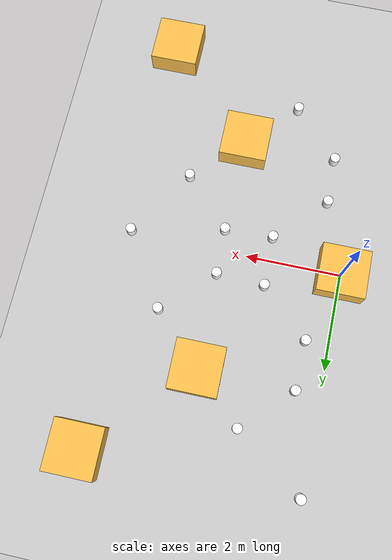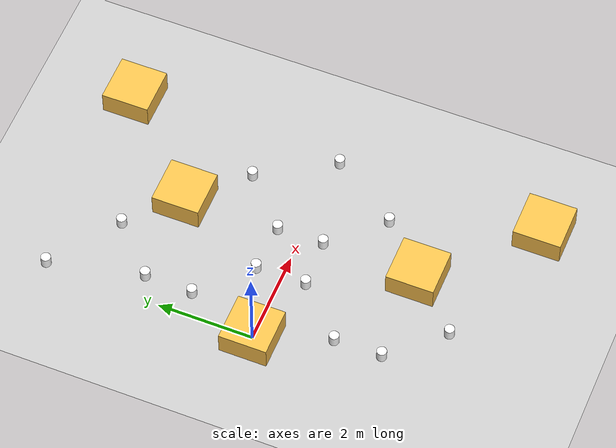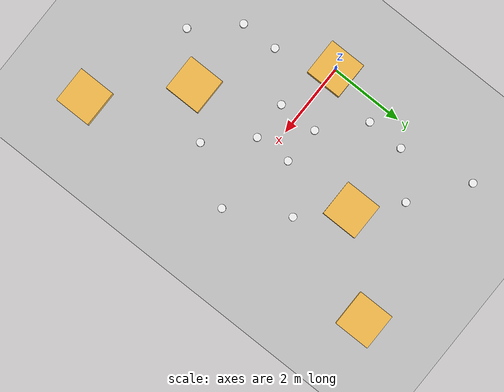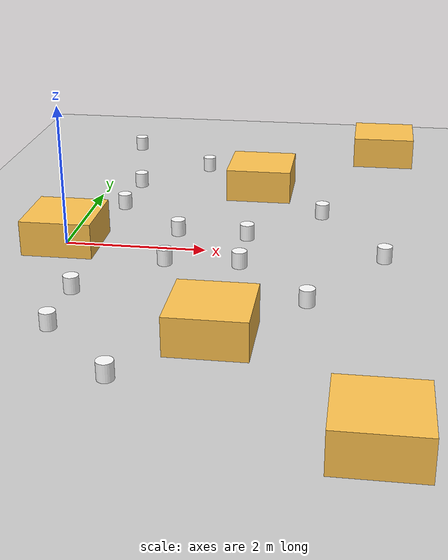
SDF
<sdf version="1.6">
 <world name="default">
  <model name="ground_plane">
   <static>1</static>
   <link name="link">
    <collision name="collision">
     <geometry><plane><normal>0 0 1</normal><size>100 100</size></plane></geometry>
     <surface><friction><ode><mu>100</mu><mu2>50</mu2></ode></friction></surface>
    </collision>
    <visual name="visual">
     <cast_shadows>0</cast_shadows>
     <geometry><plane><normal>0 0 1</normal><size>100 100</size></plane></geometry>
     <material>
      <script><uri>file://media/materials/scripts/gazebo.material</uri><name>Gazebo/Grey</name></script>
     </material>
    </visual>
   </link>
  </model>
  <model name="unit_box_0_orange_clone_7">
   <link name="link">
    <inertial>
     <mass>10</mass>
     <inertia><ixx>0.473401</ixx><ixy>0</ixy><ixz>0</ixz><iyy>2.14637</iyy><iyz>0</iyz><izz>2.14637</izz></inertia>
    </inertial>
    <visual name="visual">
     <geometry><box><size>1.00001 1 0.5</size></box></geometry>
     <material>
      <script><name>Gazebo/Grey</name><uri>file://media/materials/scripts/gazebo.material</uri></script>
      <ambient>1 0.765 0.306 1</ambient>
      <diffuse>0.7 0.7 0.7 1</diffuse>
      <specular>0.01 0.01 0.01 1</specular>
      <emissive>0 0 0 1</emissive>
      <shader type="vertex"><normal_map>__default__</normal_map></shader>
     </material>
    </visual>
    <collision name="collision">
     <geometry><box><size>1 1 0.5</size></box></geometry>
     <surface>
      <friction>
       <ode><mu>1</mu><mu2>1</mu2><fdir1>0 0 0</fdir1><slip1>0</slip1><slip2>0</slip2></ode>
       <torsional>
        <coefficient>1</coefficient>
        <patch_radius>0</patch_radius>
        <surface_radius>0</surface_radius>
        <use_patch_radius>1</use_patch_radius>
        <ode><slip>0</slip></ode>
       </torsional>
      </friction>
      <bounce><restitution_coefficient>0</restitution_coefficient><threshold>1e+06</threshold></bounce>
      <contact>
       <collide_without_contact>0</collide_without_contact>
       <collide_without_contact_bitmask>1</collide_without_contact_bitmask>
       <collide_bitmask>1</collide_bitmask>
       <ode>
        <soft_cfm>0</soft_cfm>
        <soft_erp>0.2</soft_erp>
        <kp>1e+13</kp>
        <kd>1</kd>
        <max_vel>0.01</max_vel>
        <min_depth>0</min_depth>
       </ode>
       <bullet>
        <split_impulse>1</split_impulse>
        <split_impulse_penetration_threshold>-0.01</split_impulse_penetration_threshold>
        <soft_cfm>0</soft_cfm>
        <soft_erp>0.2</soft_erp>
        <kp>1e+13</kp>
        <kd>1</kd>
       </bullet>
      </contact>
     </surface>
    </collision>
   </link>
   <static>1</static>
   <pose>2.5 -2.5 0.25 0 -0 0</pose>
  </model>
  <model name="unit_box_0_orange_clone_8_clone_0">
   <link name="link">
    <inertial>
     <mass>10</mass>
     <inertia><ixx>0.473401</ixx><ixy>0</ixy><ixz>0</ixz><iyy>2.14637</iyy><iyz>0</iyz><izz>2.14637</izz></inertia>
    </inertial>
    <visual name="visual">
     <geometry><box><size>1.00001 1 0.5</size></box></geometry>
     <material>
      <script><name>Gazebo/Grey</name><uri>file://media/materials/scripts/gazebo.material</uri></script>
      <ambient>1 0.765 0.306 1</ambient>
      <diffuse>0.7 0.7 0.7 1</diffuse>
      <specular>0.01 0.01 0.01 1</specular>
      <emissive>0 0 0 1</emissive>
      <shader type="vertex"><normal_map>__default__</normal_map></shader>
     </material>
    </visual>
    <collision name="collision">
     <geometry><box><size>1 1 0.5</size></box></geometry>
     <surface>
      <friction>
       <ode><mu>1</mu><mu2>1</mu2><fdir1>0 0 0</fdir1><slip1>0</slip1><slip2>0</slip2></ode>
       <torsional>
        <coefficient>1</coefficient>
        <patch_radius>0</patch_radius>
        <surface_radius>0</surface_radius>
        <use_patch_radius>1</use_patch_radius>
        <ode><slip>0</slip></ode>
       </torsional>
      </friction>
      <bounce><restitution_coefficient>0</restitution_coefficient><threshold>1e+06</threshold></bounce>
      <contact>
       <collide_without_contact>0</collide_without_contact>
       <collide_without_contact_bitmask>1</collide_without_contact_bitmask>
       <collide_bitmask>1</collide_bitmask>
       <ode>
        <soft_cfm>0</soft_cfm>
        <soft_erp>0.2</soft_erp>
        <kp>1e+13</kp>
        <kd>1</kd>
        <max_vel>0.01</max_vel>
        <min_depth>0</min_depth>
       </ode>
       <bullet>
        <split_impulse>1</split_impulse>
        <split_impulse_penetration_threshold>-0.01</split_impulse_penetration_threshold>
        <soft_cfm>0</soft_cfm>
        <soft_erp>0.2</soft_erp>
        <kp>1e+13</kp>
        <kd>1</kd>
       </bullet>
      </contact>
     </surface>
    </collision>
   </link>
   <static>1</static>
   <pose>2.5 2.5 0.25 0 -0 0</pose>
  </model>
  <model name="unit_box_0_orange_clone_8_clone_1">
   <link name="link">
    <inertial>
     <mass>10</mass>
     <inertia><ixx>0.473401</ixx><ixy>0</ixy><ixz>0</ixz><iyy>2.14637</iyy><iyz>0</iyz><izz>2.14637</izz></inertia>
    </inertial>
    <visual name="visual">
     <geometry><box><size>1.00001 1 0.5</size></box></geometry>
     <material>
      <script><name>Gazebo/Grey</name><uri>file://media/materials/scripts/gazebo.material</uri></script>
      <ambient>1 0.765 0.306 1</ambient>
      <diffuse>0.7 0.7 0.7 1</diffuse>
      <specular>0.01 0.01 0.01 1</specular>
      <emissive>0 0 0 1</emissive>
      <shader type="vertex"><normal_map>__default__</normal_map></shader>
     </material>
    </visual>
    <collision name="collision">
     <geometry><box><size>1 1 0.5</size></box></geometry>
     <surface>
      <friction>
       <ode><mu>1</mu><mu2>1</mu2><fdir1>0 0 0</fdir1><slip1>0</slip1><slip2>0</slip2></ode>
       <torsional>
        <coefficient>1</coefficient>
        <patch_radius>0</patch_radius>
        <surface_radius>0</surface_radius>
        <use_patch_radius>1</use_patch_radius>
        <ode><slip>0</slip></ode>
       </torsional>
      </friction>
      <bounce><restitution_coefficient>0</restitution_coefficient><threshold>1e+06</threshold></bounce>
      <contact>
       <collide_without_contact>0</collide_without_contact>
       <collide_without_contact_bitmask>1</collide_without_contact_bitmask>
       <collide_bitmask>1</collide_bitmask>
       <ode>
        <soft_cfm>0</soft_cfm>
        <soft_erp>0.2</soft_erp>
        <kp>1e+13</kp>
        <kd>1</kd>
        <max_vel>0.01</max_vel>
        <min_depth>0</min_depth>
       </ode>
       <bullet>
        <split_impulse>1</split_impulse>
        <split_impulse_penetration_threshold>-0.01</split_impulse_penetration_threshold>
        <soft_cfm>0</soft_cfm>
        <soft_erp>0.2</soft_erp>
        <kp>1e+13</kp>
        <kd>1</kd>
       </bullet>
      </contact>
     </surface>
    </collision>
   </link>
   <static>1</static>
   <pose>0 0 0.25 0 -0 0</pose>
  </model>
  <model name="unit_box_0_orange_clone_7_clone">
   <link name="link">
    <inertial>
     <mass>10</mass>
     <inertia><ixx>0.473401</ixx><ixy>0</ixy><ixz>0</ixz><iyy>2.14637</iyy><iyz>0</iyz><izz>2.14637</izz></inertia>
    </inertial>
    <visual name="visual">
     <geometry><box><size>1.00001 1 0.5</size></box></geometry>
     <material>
      <script><name>Gazebo/Grey</name><uri>file://media/materials/scripts/gazebo.material</uri></script>
      <ambient>1 0.765 0.306 1</ambient>
      <diffuse>0.7 0.7 0.7 1</diffuse>
      <specular>0.01 0.01 0.01 1</specular>
      <emissive>0 0 0 1</emissive>
      <shader type="vertex"><normal_map>__default__</normal_map></shader>
     </material>
    </visual>
    <collision name="collision">
     <geometry><box><size>1 1 0.5</size></box></geometry>
     <surface>
      <friction>
       <ode><mu>1</mu><mu2>1</mu2><fdir1>0 0 0</fdir1><slip1>0</slip1><slip2>0</slip2></ode>
       <torsional>
        <coefficient>1</coefficient>
        <patch_radius>0</patch_radius>
        <surface_radius>0</surface_radius>
        <use_patch_radius>1</use_patch_radius>
        <ode><slip>0</slip></ode>
       </torsional>
      </friction>
      <bounce><restitution_coefficient>0</restitution_coefficient><threshold>1e+06</threshold></bounce>
      <contact>
       <collide_without_contact>0</collide_without_contact>
       <collide_without_contact_bitmask>1</collide_without_contact_bitmask>
       <collide_bitmask>1</collide_bitmask>
       <ode>
        <soft_cfm>0</soft_cfm>
        <soft_erp>0.2</soft_erp>
        <kp>1e+13</kp>
        <kd>1</kd>
        <max_vel>0.01</max_vel>
        <min_depth>0</min_depth>
       </ode>
       <bullet>
        <split_impulse>1</split_impulse>
        <split_impulse_penetration_threshold>-0.01</split_impulse_penetration_threshold>
        <soft_cfm>0</soft_cfm>
        <soft_erp>0.2</soft_erp>
        <kp>1e+13</kp>
        <kd>1</kd>
       </bullet>
      </contact>
     </surface>
    </collision>
   </link>
   <static>1</static>
   <pose>4.43771 -4.44352 0.25 0 -0 0</pose>
  </model>
  <model name="unit_box_0_orange_clone_7_clone_2">
   <link name="link">
    <inertial>
     <mass>10</mass>
     <inertia><ixx>0.473401</ixx><ixy>0</ixy><ixz>0</ixz><iyy>2.14637</iyy><iyz>0</iyz><izz>2.14637</izz></inertia>
    </inertial>
    <visual name="visual">
     <geometry><box><size>1.00001 1 0.5</size></box></geometry>
     <material>
      <script><name>Gazebo/Grey</name><uri>file://media/materials/scripts/gazebo.material</uri></script>
      <ambient>1 0.765 0.306 1</ambient>
      <diffuse>0.7 0.7 0.7 1</diffuse>
      <specular>0.01 0.01 0.01 1</specular>
      <emissive>0 0 0 1</emissive>
      <shader type="vertex"><normal_map>__default__</normal_map></shader>
     </material>
    </visual>
    <collision name="collision">
     <geometry><box><size>1 1 0.5</size></box></geometry>
     <surface>
      <friction>
       <ode><mu>1</mu><mu2>1</mu2><fdir1>0 0 0</fdir1><slip1>0</slip1><slip2>0</slip2></ode>
       <torsional>
        <coefficient>1</coefficient>
        <patch_radius>0</patch_radius>
        <surface_radius>0</surface_radius>
        <use_patch_radius>1</use_patch_radius>
        <ode><slip>0</slip></ode>
       </torsional>
      </friction>
      <bounce><restitution_coefficient>0</restitution_coefficient><threshold>1e+06</threshold></bounce>
      <contact>
       <collide_without_contact>0</collide_without_contact>
       <collide_without_contact_bitmask>1</collide_without_contact_bitmask>
       <collide_bitmask>1</collide_bitmask>
       <ode>
        <soft_cfm>0</soft_cfm>
        <soft_erp>0.2</soft_erp>
        <kp>1e+13</kp>
        <kd>1</kd>
        <max_vel>0.01</max_vel>
        <min_depth>0</min_depth>
       </ode>
       <bullet>
        <split_impulse>1</split_impulse>
        <split_impulse_penetration_threshold>-0.01</split_impulse_penetration_threshold>
        <soft_cfm>0</soft_cfm>
        <soft_erp>0.2</soft_erp>
        <kp>1e+13</kp>
        <kd>1</kd>
       </bullet>
      </contact>
     </surface>
    </collision>
   </link>
   <static>1</static>
   <pose>4.44066 4.44748 0.25 0 -0 0</pose>
  </model>
  <model name="beer_big_0">
   <link name="link">
    <pose>0 0 0.115 0 -0 0</pose>
    <inertial>
     <mass>1.34731</mass>
     <inertia>
      <ixx>0.0028093</ixx>
      <ixy>0</ixy>
      <ixz>0</ixz>
      <iyy>0.0028093</iyy>
      <iyz>0</iyz>
      <izz>0.00226756</izz>
     </inertia>
    </inertial>
    <visual name="visual">
     <geometry><cylinder><radius>0.102222</radius><length>0.23</length></cylinder></geometry>
     <material>
      <script>
       <uri>model://beer/materials/scripts</uri>
       <uri>model://beer/materials/textures</uri>
       <name>Beer/Diffuse</name>
      </script>
      <ambient>1 1 1 1</ambient>
      <diffuse>1 1 1 1</diffuse>
      <specular>0 0 0 1</specular>
      <emissive>0 0 0 1</emissive>
     </material>
    </visual>
    <collision name="collision">
     <geometry><cylinder><radius>0.102222</radius><length>0.23</length></cylinder></geometry>
     <surface>
      <friction>
       <ode><mu>1</mu><mu2>1</mu2><fdir1>0 0 0</fdir1><slip1>0</slip1><slip2>0</slip2></ode>
       <torsional>
        <coefficient>1</coefficient>
        <patch_radius>0</patch_radius>
        <surface_radius>0</surface_radius>
        <use_patch_radius>1</use_patch_radius>
        <ode><slip>0</slip></ode>
       </torsional>
      </friction>
      <bounce><restitution_coefficient>0</restitution_coefficient><threshold>1e+06</threshold></bounce>
      <contact>
       <collide_without_contact>0</collide_without_contact>
       <collide_without_contact_bitmask>1</collide_without_contact_bitmask>
       <collide_bitmask>1</collide_bitmask>
       <ode>
        <soft_cfm>0</soft_cfm>
        <soft_erp>0.2</soft_erp>
        <kp>1e+13</kp>
        <kd>1</kd>
        <max_vel>0.01</max_vel>
        <min_depth>0</min_depth>
       </ode>
       <bullet>
        <split_impulse>1</split_impulse>
        <split_impulse_penetration_threshold>-0.01</split_impulse_penetration_threshold>
        <soft_cfm>0</soft_cfm>
        <soft_erp>0.2</soft_erp>
        <kp>1e+13</kp>
        <kd>1</kd>
       </bullet>
      </contact>
     </surface>
    </collision>
   </link>
   <static>0</static>
   <pose>4.47702 -0.049065 0 0 0 -5e-06</pose>
  </model>
  <model name="beer_big_1">
   <link name="link">
    <pose>0 0 0.115 0 -0 0</pose>
    <inertial>
     <mass>1.34731</mass>
     <inertia>
      <ixx>0.0028093</ixx>
      <ixy>0</ixy>
      <ixz>0</ixz>
      <iyy>0.0028093</iyy>
      <iyz>0</iyz>
      <izz>0.00226756</izz>
     </inertia>
    </inertial>
    <visual name="visual">
     <geometry><cylinder><radius>0.102222</radius><length>0.23</length></cylinder></geometry>
     <material>
      <script>
       <uri>model://beer/materials/scripts</uri>
       <uri>model://beer/materials/textures</uri>
       <name>Beer/Diffuse</name>
      </script>
      <ambient>1 1 1 1</ambient>
      <diffuse>1 1 1 1</diffuse>
      <specular>0 0 0 1</specular>
      <emissive>0 0 0 1</emissive>
     </material>
    </visual>
    <collision name="collision">
     <geometry><cylinder><radius>0.102222</radius><length>0.23</length></cylinder></geometry>
     <surface>
      <friction>
       <ode><mu>1</mu><mu2>1</mu2><fdir1>0 0 0</fdir1><slip1>0</slip1><slip2>0</slip2></ode>
       <torsional>
        <coefficient>1</coefficient>
        <patch_radius>0</patch_radius>
        <surface_radius>0</surface_radius>
        <use_patch_radius>1</use_patch_radius>
        <ode><slip>0</slip></ode>
       </torsional>
      </friction>
      <bounce><restitution_coefficient>0</restitution_coefficient><threshold>1e+06</threshold></bounce>
      <contact>
       <collide_without_contact>0</collide_without_contact>
       <collide_without_contact_bitmask>1</collide_without_contact_bitmask>
       <collide_bitmask>1</collide_bitmask>
       <ode>
        <soft_cfm>0</soft_cfm>
        <soft_erp>0.2</soft_erp>
        <kp>1e+13</kp>
        <kd>1</kd>
        <max_vel>0.01</max_vel>
        <min_depth>0</min_depth>
       </ode>
       <bullet>
        <split_impulse>1</split_impulse>
        <split_impulse_penetration_threshold>-0.01</split_impulse_penetration_threshold>
        <soft_cfm>0</soft_cfm>
        <soft_erp>0.2</soft_erp>
        <kp>1e+13</kp>
        <kd>1</kd>
       </bullet>
      </contact>
     </surface>
    </collision>
   </link>
   <static>0</static>
   <pose>3.52895 -1.49271 0 0 -0 0</pose>
  </model>
  <model name="beer_big_2">
   <link name="link">
    <pose>0 0 0.115 0 -0 0</pose>
    <inertial>
     <mass>1.34731</mass>
     <inertia>
      <ixx>0.0028093</ixx>
      <ixy>0</ixy>
      <ixz>0</ixz>
      <iyy>0.0028093</iyy>
      <iyz>0</iyz>
      <izz>0.00226756</izz>
     </inertia>
    </inertial>
    <visual name="visual">
     <geometry><cylinder><radius>0.102222</radius><length>0.23</length></cylinder></geometry>
     <material>
      <script>
       <uri>model://beer/materials/scripts</uri>
       <uri>model://beer/materials/textures</uri>
       <name>Beer/Diffuse</name>
      </script>
      <ambient>1 1 1 1</ambient>
      <diffuse>1 1 1 1</diffuse>
      <specular>0 0 0 1</specular>
      <emissive>0 0 0 1</emissive>
     </material>
    </visual>
    <collision name="collision">
     <geometry><cylinder><radius>0.102222</radius><length>0.23</length></cylinder></geometry>
     <surface>
      <friction>
       <ode><mu>1</mu><mu2>1</mu2><fdir1>0 0 0</fdir1><slip1>0</slip1><slip2>0</slip2></ode>
       <torsional>
        <coefficient>1</coefficient>
        <patch_radius>0</patch_radius>
        <surface_radius>0</surface_radius>
        <use_patch_radius>1</use_patch_radius>
        <ode><slip>0</slip></ode>
       </torsional>
      </friction>
      <bounce><restitution_coefficient>0</restitution_coefficient><threshold>1e+06</threshold></bounce>
      <contact>
       <collide_without_contact>0</collide_without_contact>
       <collide_without_contact_bitmask>1</collide_without_contact_bitmask>
       <collide_bitmask>1</collide_bitmask>
       <ode>
        <soft_cfm>0</soft_cfm>
        <soft_erp>0.2</soft_erp>
        <kp>1e+13</kp>
        <kd>1</kd>
        <max_vel>0.01</max_vel>
        <min_depth>0</min_depth>
       </ode>
       <bullet>
        <split_impulse>1</split_impulse>
        <split_impulse_penetration_threshold>-0.01</split_impulse_penetration_threshold>
        <soft_cfm>0</soft_cfm>
        <soft_erp>0.2</soft_erp>
        <kp>1e+13</kp>
        <kd>1</kd>
       </bullet>
      </contact>
     </surface>
    </collision>
   </link>
   <static>0</static>
   <pose>3.53977 1.47202 0 0 -0 0</pose>
  </model>
  <model name="beer_big_3">
   <link name="link">
    <pose>0 0 0.115 0 -0 0</pose>
    <inertial>
     <mass>1.34731</mass>
     <inertia>
      <ixx>0.0028093</ixx>
      <ixy>0</ixy>
      <ixz>0</ixz>
      <iyy>0.0028093</iyy>
      <iyz>0</iyz>
      <izz>0.00226756</izz>
     </inertia>
    </inertial>
    <visual name="visual">
     <geometry><cylinder><radius>0.102222</radius><length>0.23</length></cylinder></geometry>
     <material>
      <script>
       <uri>model://beer/materials/scripts</uri>
       <uri>model://beer/materials/textures</uri>
       <name>Beer/Diffuse</name>
      </script>
      <ambient>1 1 1 1</ambient>
      <diffuse>1 1 1 1</diffuse>
      <specular>0 0 0 1</specular>
      <emissive>0 0 0 1</emissive>
     </material>
    </visual>
    <collision name="collision">
     <geometry><cylinder><radius>0.102222</radius><length>0.23</length></cylinder></geometry>
     <surface>
      <friction>
       <ode><mu>1</mu><mu2>1</mu2><fdir1>0 0 0</fdir1><slip1>0</slip1><slip2>0</slip2></ode>
       <torsional>
        <coefficient>1</coefficient>
        <patch_radius>0</patch_radius>
        <surface_radius>0</surface_radius>
        <use_patch_radius>1</use_patch_radius>
        <ode><slip>0</slip></ode>
       </torsional>
      </friction>
      <bounce><restitution_coefficient>0</restitution_coefficient><threshold>1e+06</threshold></bounce>
      <contact>
       <collide_without_contact>0</collide_without_contact>
       <collide_without_contact_bitmask>1</collide_without_contact_bitmask>
       <collide_bitmask>1</collide_bitmask>
       <ode>
        <soft_cfm>0</soft_cfm>
        <soft_erp>0.2</soft_erp>
        <kp>1e+13</kp>
        <kd>1</kd>
        <max_vel>0.01</max_vel>
        <min_depth>0</min_depth>
       </ode>
       <bullet>
        <split_impulse>1</split_impulse>
        <split_impulse_penetration_threshold>-0.01</split_impulse_penetration_threshold>
        <soft_cfm>0</soft_cfm>
        <soft_erp>0.2</soft_erp>
        <kp>1e+13</kp>
        <kd>1</kd>
       </bullet>
      </contact>
     </surface>
    </collision>
   </link>
   <static>0</static>
   <pose>2.5427 -0.464399 0 0 -0 0</pose>
  </model>
  <model name="beer_big_4">
   <link name="link">
    <pose>0 0 0.115 0 -0 0</pose>
    <inertial>
     <mass>1.34731</mass>
     <inertia>
      <ixx>0.0028093</ixx>
      <ixy>0</ixy>
      <ixz>0</ixz>
      <iyy>0.0028093</iyy>
      <iyz>0</iyz>
      <izz>0.00226756</izz>
     </inertia>
    </inertial>
    <visual name="visual">
     <geometry><cylinder><radius>0.102222</radius><length>0.23</length></cylinder></geometry>
     <material>
      <script>
       <uri>model://beer/materials/scripts</uri>
       <uri>model://beer/materials/textures</uri>
       <name>Beer/Diffuse</name>
      </script>
      <ambient>1 1 1 1</ambient>
      <diffuse>1 1 1 1</diffuse>
      <specular>0 0 0 1</specular>
      <emissive>0 0 0 1</emissive>
     </material>
    </visual>
    <collision name="collision">
     <geometry><cylinder><radius>0.102222</radius><length>0.23</length></cylinder></geometry>
     <surface>
      <friction>
       <ode><mu>1</mu><mu2>1</mu2><fdir1>0 0 0</fdir1><slip1>0</slip1><slip2>0</slip2></ode>
       <torsional>
        <coefficient>1</coefficient>
        <patch_radius>0</patch_radius>
        <surface_radius>0</surface_radius>
        <use_patch_radius>1</use_patch_radius>
        <ode><slip>0</slip></ode>
       </torsional>
      </friction>
      <bounce><restitution_coefficient>0</restitution_coefficient><threshold>1e+06</threshold></bounce>
      <contact>
       <collide_without_contact>0</collide_without_contact>
       <collide_without_contact_bitmask>1</collide_without_contact_bitmask>
       <collide_bitmask>1</collide_bitmask>
       <ode>
        <soft_cfm>0</soft_cfm>
        <soft_erp>0.2</soft_erp>
        <kp>1e+13</kp>
        <kd>1</kd>
        <max_vel>0.01</max_vel>
        <min_depth>0</min_depth>
       </ode>
       <bullet>
        <split_impulse>1</split_impulse>
        <split_impulse_penetration_threshold>-0.01</split_impulse_penetration_threshold>
        <soft_cfm>0</soft_cfm>
        <soft_erp>0.2</soft_erp>
        <kp>1e+13</kp>
        <kd>1</kd>
       </bullet>
      </contact>
     </surface>
    </collision>
   </link>
   <static>0</static>
   <pose>2.52241 0.503922 0 0 -0 0</pose>
  </model>
  <model name="beer_big_5">
   <link name="link">
    <pose>0 0 0.115 0 -0 0</pose>
    <inertial>
     <mass>1.34731</mass>
     <inertia>
      <ixx>0.0028093</ixx>
      <ixy>0</ixy>
      <ixz>0</ixz>
      <iyy>0.0028093</iyy>
      <iyz>0</iyz>
      <izz>0.00226756</izz>
     </inertia>
    </inertial>
    <visual name="visual">
     <geometry><cylinder><radius>0.102222</radius><length>0.23</length></cylinder></geometry>
     <material>
      <script>
       <uri>model://beer/materials/scripts</uri>
       <uri>model://beer/materials/textures</uri>
       <name>Beer/Diffuse</name>
      </script>
      <ambient>1 1 1 1</ambient>
      <diffuse>1 1 1 1</diffuse>
      <specular>0 0 0 1</specular>
      <emissive>0 0 0 1</emissive>
     </material>
    </visual>
    <collision name="collision">
     <geometry><cylinder><radius>0.102222</radius><length>0.23</length></cylinder></geometry>
     <surface>
      <friction>
       <ode><mu>1</mu><mu2>1</mu2><fdir1>0 0 0</fdir1><slip1>0</slip1><slip2>0</slip2></ode>
       <torsional>
        <coefficient>1</coefficient>
        <patch_radius>0</patch_radius>
        <surface_radius>0</surface_radius>
        <use_patch_radius>1</use_patch_radius>
        <ode><slip>0</slip></ode>
       </torsional>
      </friction>
      <bounce><restitution_coefficient>0</restitution_coefficient><threshold>1e+06</threshold></bounce>
      <contact>
       <collide_without_contact>0</collide_without_contact>
       <collide_without_contact_bitmask>1</collide_without_contact_bitmask>
       <collide_bitmask>1</collide_bitmask>
       <ode>
        <soft_cfm>0</soft_cfm>
        <soft_erp>0.2</soft_erp>
        <kp>1e+13</kp>
        <kd>1</kd>
        <max_vel>0.01</max_vel>
        <min_depth>0</min_depth>
       </ode>
       <bullet>
        <split_impulse>1</split_impulse>
        <split_impulse_penetration_threshold>-0.01</split_impulse_penetration_threshold>
        <soft_cfm>0</soft_cfm>
        <soft_erp>0.2</soft_erp>
        <kp>1e+13</kp>
        <kd>1</kd>
       </bullet>
      </contact>
     </surface>
    </collision>
   </link>
   <static>0</static>
   <pose>1.52598 -0.504635 0 0 -0 0</pose>
  </model>
  <model name="beer_big_6">
   <link name="link">
    <pose>0 0 0.115 0 -0 0</pose>
    <inertial>
     <mass>1.34731</mass>
     <inertia>
      <ixx>0.0028093</ixx>
      <ixy>0</ixy>
      <ixz>0</ixz>
      <iyy>0.0028093</iyy>
      <iyz>0</iyz>
      <izz>0.00226756</izz>
     </inertia>
    </inertial>
    <visual name="visual">
     <geometry><cylinder><radius>0.102222</radius><length>0.23</length></cylinder></geometry>
     <material>
      <script>
       <uri>model://beer/materials/scripts</uri>
       <uri>model://beer/materials/textures</uri>
       <name>Beer/Diffuse</name>
      </script>
      <ambient>1 1 1 1</ambient>
      <diffuse>1 1 1 1</diffuse>
      <specular>0 0 0 1</specular>
      <emissive>0 0 0 1</emissive>
     </material>
    </visual>
    <collision name="collision">
     <geometry><cylinder><radius>0.102222</radius><length>0.23</length></cylinder></geometry>
     <surface>
      <friction>
       <ode><mu>1</mu><mu2>1</mu2><fdir1>0 0 0</fdir1><slip1>0</slip1><slip2>0</slip2></ode>
       <torsional>
        <coefficient>1</coefficient>
        <patch_radius>0</patch_radius>
        <surface_radius>0</surface_radius>
        <use_patch_radius>1</use_patch_radius>
        <ode><slip>0</slip></ode>
       </torsional>
      </friction>
      <bounce><restitution_coefficient>0</restitution_coefficient><threshold>1e+06</threshold></bounce>
      <contact>
       <collide_without_contact>0</collide_without_contact>
       <collide_without_contact_bitmask>1</collide_without_contact_bitmask>
       <collide_bitmask>1</collide_bitmask>
       <ode>
        <soft_cfm>0</soft_cfm>
        <soft_erp>0.2</soft_erp>
        <kp>1e+13</kp>
        <kd>1</kd>
        <max_vel>0.01</max_vel>
        <min_depth>0</min_depth>
       </ode>
       <bullet>
        <split_impulse>1</split_impulse>
        <split_impulse_penetration_threshold>-0.01</split_impulse_penetration_threshold>
        <soft_cfm>0</soft_cfm>
        <soft_erp>0.2</soft_erp>
        <kp>1e+13</kp>
        <kd>1</kd>
       </bullet>
      </contact>
     </surface>
    </collision>
   </link>
   <static>0</static>
   <pose>1.51069 0.547359 0 0 -0 0</pose>
  </model>
  <model name="beer_big_8">
   <link name="link">
    <pose>0 0 0.115 0 -0 0</pose>
    <inertial>
     <mass>1.34731</mass>
     <inertia>
      <ixx>0.0028093</ixx>
      <ixy>0</ixy>
      <ixz>0</ixz>
      <iyy>0.0028093</iyy>
      <iyz>0</iyz>
      <izz>0.00226756</izz>
     </inertia>
    </inertial>
    <visual name="visual">
     <geometry><cylinder><radius>0.102222</radius><length>0.23</length></cylinder></geometry>
     <material>
      <script>
       <uri>model://beer/materials/scripts</uri>
       <uri>model://beer/materials/textures</uri>
       <name>Beer/Diffuse</name>
      </script>
      <ambient>1 1 1 1</ambient>
      <diffuse>1 1 1 1</diffuse>
      <specular>0 0 0 1</specular>
      <emissive>0 0 0 1</emissive>
     </material>
    </visual>
    <collision name="collision">
     <geometry><cylinder><radius>0.102222</radius><length>0.23</length></cylinder></geometry>
     <surface>
      <friction>
       <ode><mu>1</mu><mu2>1</mu2><fdir1>0 0 0</fdir1><slip1>0</slip1><slip2>0</slip2></ode>
       <torsional>
        <coefficient>1</coefficient>
        <patch_radius>0</patch_radius>
        <surface_radius>0</surface_radius>
        <use_patch_radius>1</use_patch_radius>
        <ode><slip>0</slip></ode>
       </torsional>
      </friction>
      <bounce><restitution_coefficient>0</restitution_coefficient><threshold>1e+06</threshold></bounce>
      <contact>
       <collide_without_contact>0</collide_without_contact>
       <collide_without_contact_bitmask>1</collide_without_contact_bitmask>
       <collide_bitmask>1</collide_bitmask>
       <ode>
        <soft_cfm>0</soft_cfm>
        <soft_erp>0.2</soft_erp>
        <kp>1e+13</kp>
        <kd>1</kd>
        <max_vel>0.01</max_vel>
        <min_depth>0</min_depth>
       </ode>
       <bullet>
        <split_impulse>1</split_impulse>
        <split_impulse_penetration_threshold>-0.01</split_impulse_penetration_threshold>
        <soft_cfm>0</soft_cfm>
        <soft_erp>0.2</soft_erp>
        <kp>1e+13</kp>
        <kd>1</kd>
       </bullet>
      </contact>
     </surface>
    </collision>
   </link>
   <static>0</static>
   <pose>0.524385 -1.50931 0 0 -0 0</pose>
  </model>
  <model name="beer_big_10">
   <link name="link">
    <pose>0 0 0.115 0 -0 0</pose>
    <inertial>
     <mass>1.34731</mass>
     <inertia>
      <ixx>0.0028093</ixx>
      <ixy>0</ixy>
      <ixz>0</ixz>
      <iyy>0.0028093</iyy>
      <iyz>0</iyz>
      <izz>0.00226756</izz>
     </inertia>
    </inertial>
    <visual name="visual">
     <geometry><cylinder><radius>0.102222</radius><length>0.23</length></cylinder></geometry>
     <material>
      <script>
       <uri>model://beer/materials/scripts</uri>
       <uri>model://beer/materials/textures</uri>
       <name>Beer/Diffuse</name>
      </script>
      <ambient>1 1 1 1</ambient>
      <diffuse>1 1 1 1</diffuse>
      <specular>0 0 0 1</specular>
      <emissive>0 0 0 1</emissive>
     </material>
    </visual>
    <collision name="collision">
     <geometry><cylinder><radius>0.102222</radius><length>0.23</length></cylinder></geometry>
     <surface>
      <friction>
       <ode><mu>1</mu><mu2>1</mu2><fdir1>0 0 0</fdir1><slip1>0</slip1><slip2>0</slip2></ode>
       <torsional>
        <coefficient>1</coefficient>
        <patch_radius>0</patch_radius>
        <surface_radius>0</surface_radius>
        <use_patch_radius>1</use_patch_radius>
        <ode><slip>0</slip></ode>
       </torsional>
      </friction>
      <bounce><restitution_coefficient>0</restitution_coefficient><threshold>1e+06</threshold></bounce>
      <contact>
       <collide_without_contact>0</collide_without_contact>
       <collide_without_contact_bitmask>1</collide_without_contact_bitmask>
       <collide_bitmask>1</collide_bitmask>
       <ode>
        <soft_cfm>0</soft_cfm>
        <soft_erp>0.2</soft_erp>
        <kp>1e+13</kp>
        <kd>1</kd>
        <max_vel>0.01</max_vel>
        <min_depth>0</min_depth>
       </ode>
       <bullet>
        <split_impulse>1</split_impulse>
        <split_impulse_penetration_threshold>-0.01</split_impulse_penetration_threshold>
        <soft_cfm>0</soft_cfm>
        <soft_erp>0.2</soft_erp>
        <kp>1e+13</kp>
        <kd>1</kd>
       </bullet>
      </contact>
     </surface>
    </collision>
   </link>
   <static>0</static>
   <pose>0.536049 -2.50001 0 0 -0 0</pose>
  </model>
  <model name="beer_big_13">
   <link name="link">
    <pose>0 0 0.115 0 -0 0</pose>
    <inertial>
     <mass>1.34731</mass>
     <inertia>
      <ixx>0.0028093</ixx>
      <ixy>0</ixy>
      <ixz>0</ixz>
      <iyy>0.0028093</iyy>
      <iyz>0</iyz>
      <izz>0.00226756</izz>
     </inertia>
    </inertial>
    <visual name="visual">
     <geometry><cylinder><radius>0.102222</radius><length>0.23</length></cylinder></geometry>
     <material>
      <script>
       <uri>model://beer/materials/scripts</uri>
       <uri>model://beer/materials/textures</uri>
       <name>Beer/Diffuse</name>
      </script>
      <ambient>1 1 1 1</ambient>
      <diffuse>1 1 1 1</diffuse>
      <specular>0 0 0 1</specular>
      <emissive>0 0 0 1</emissive>
     </material>
    </visual>
    <collision name="collision">
     <geometry><cylinder><radius>0.102222</radius><length>0.23</length></cylinder></geometry>
     <surface>
      <friction>
       <ode><mu>1</mu><mu2>1</mu2><fdir1>0 0 0</fdir1><slip1>0</slip1><slip2>0</slip2></ode>
       <torsional>
        <coefficient>1</coefficient>
        <patch_radius>0</patch_radius>
        <surface_radius>0</surface_radius>
        <use_patch_radius>1</use_patch_radius>
        <ode><slip>0</slip></ode>
       </torsional>
      </friction>
      <bounce><restitution_coefficient>0</restitution_coefficient><threshold>1e+06</threshold></bounce>
      <contact>
       <collide_without_contact>0</collide_without_contact>
       <collide_without_contact_bitmask>1</collide_without_contact_bitmask>
       <collide_bitmask>1</collide_bitmask>
       <ode>
        <soft_cfm>0</soft_cfm>
        <soft_erp>0.2</soft_erp>
        <kp>1e+13</kp>
        <kd>1</kd>
        <max_vel>0.01</max_vel>
        <min_depth>0</min_depth>
       </ode>
       <bullet>
        <split_impulse>1</split_impulse>
        <split_impulse_penetration_threshold>-0.01</split_impulse_penetration_threshold>
        <soft_cfm>0</soft_cfm>
        <soft_erp>0.2</soft_erp>
        <kp>1e+13</kp>
        <kd>1</kd>
       </bullet>
      </contact>
     </surface>
    </collision>
   </link>
   <static>0</static>
   <pose>1.5089 -3.53936 0 0 -0 0</pose>
  </model>
  <model name="beer_big_22">
   <link name="link">
    <pose>0 0 0.115 0 -0 0</pose>
    <inertial>
     <mass>1.34731</mass>
     <inertia>
      <ixx>0.0028093</ixx>
      <ixy>0</ixy>
      <ixz>0</ixz>
      <iyy>0.0028093</iyy>
      <iyz>0</iyz>
      <izz>0.00226756</izz>
     </inertia>
    </inertial>
    <visual name="visual">
     <geometry><cylinder><radius>0.102222</radius><length>0.23</length></cylinder></geometry>
     <material>
      <script>
       <uri>model://beer/materials/scripts</uri>
       <uri>model://beer/materials/textures</uri>
       <name>Beer/Diffuse</name>
      </script>
      <ambient>1 1 1 1</ambient>
      <diffuse>1 1 1 1</diffuse>
      <specular>0 0 0 1</specular>
      <emissive>0 0 0 1</emissive>
     </material>
    </visual>
    <collision name="collision">
     <geometry><cylinder><radius>0.102222</radius><length>0.23</length></cylinder></geometry>
     <surface>
      <friction>
       <ode><mu>1</mu><mu2>1</mu2><fdir1>0 0 0</fdir1><slip1>0</slip1><slip2>0</slip2></ode>
       <torsional>
        <coefficient>1</coefficient>
        <patch_radius>0</patch_radius>
        <surface_radius>0</surface_radius>
        <use_patch_radius>1</use_patch_radius>
        <ode><slip>0</slip></ode>
       </torsional>
      </friction>
      <bounce><restitution_coefficient>0</restitution_coefficient><threshold>1e+06</threshold></bounce>
      <contact>
       <collide_without_contact>0</collide_without_contact>
       <collide_without_contact_bitmask>1</collide_without_contact_bitmask>
       <collide_bitmask>1</collide_bitmask>
       <ode>
        <soft_cfm>0</soft_cfm>
        <soft_erp>0.2</soft_erp>
        <kp>1e+13</kp>
        <kd>1</kd>
        <max_vel>0.01</max_vel>
        <min_depth>0</min_depth>
       </ode>
       <bullet>
        <split_impulse>1</split_impulse>
        <split_impulse_penetration_threshold>-0.01</split_impulse_penetration_threshold>
        <soft_cfm>0</soft_cfm>
        <soft_erp>0.2</soft_erp>
        <kp>1e+13</kp>
        <kd>1</kd>
       </bullet>
      </contact>
     </surface>
    </collision>
   </link>
   <static>0</static>
   <pose>0.488346 1.49254 0 0 -0 0</pose>
  </model>
  <model name="beer_big_24">
   <link name="link">
    <pose>0 0 0.115 0 -0 0</pose>
    <inertial>
     <mass>1.34731</mass>
     <inertia>
      <ixx>0.0028093</ixx>
      <ixy>0</ixy>
      <ixz>0</ixz>
      <iyy>0.0028093</iyy>
      <iyz>0</iyz>
      <izz>0.00226756</izz>
     </inertia>
    </inertial>
    <visual name="visual">
     <geometry><cylinder><radius>0.102222</radius><length>0.23</length></cylinder></geometry>
     <material>
      <script>
       <uri>model://beer/materials/scripts</uri>
       <uri>model://beer/materials/textures</uri>
       <name>Beer/Diffuse</name>
      </script>
      <ambient>1 1 1 1</ambient>
      <diffuse>1 1 1 1</diffuse>
      <specular>0 0 0 1</specular>
      <emissive>0 0 0 1</emissive>
     </material>
    </visual>
    <collision name="collision">
     <geometry><cylinder><radius>0.102222</radius><length>0.23</length></cylinder></geometry>
     <surface>
      <friction>
       <ode><mu>1</mu><mu2>1</mu2><fdir1>0 0 0</fdir1><slip1>0</slip1><slip2>0</slip2></ode>
       <torsional>
        <coefficient>1</coefficient>
        <patch_radius>0</patch_radius>
        <surface_radius>0</surface_radius>
        <use_patch_radius>1</use_patch_radius>
        <ode><slip>0</slip></ode>
       </torsional>
      </friction>
      <bounce><restitution_coefficient>0</restitution_coefficient><threshold>1e+06</threshold></bounce>
      <contact>
       <collide_without_contact>0</collide_without_contact>
       <collide_without_contact_bitmask>1</collide_without_contact_bitmask>
       <collide_bitmask>1</collide_bitmask>
       <ode>
        <soft_cfm>0</soft_cfm>
        <soft_erp>0.2</soft_erp>
        <kp>1e+13</kp>
        <kd>1</kd>
        <max_vel>0.01</max_vel>
        <min_depth>0</min_depth>
       </ode>
       <bullet>
        <split_impulse>1</split_impulse>
        <split_impulse_penetration_threshold>-0.01</split_impulse_penetration_threshold>
        <soft_cfm>0</soft_cfm>
        <soft_erp>0.2</soft_erp>
        <kp>1e+13</kp>
        <kd>1</kd>
       </bullet>
      </contact>
     </surface>
    </collision>
   </link>
   <static>0</static>
   <pose>0.516994 2.50583 0 0 -0 0</pose>
  </model>
  <model name="beer_big_26">
   <link name="link">
    <pose>0 0 0.115 0 -0 0</pose>
    <inertial>
     <mass>1.34731</mass>
     <inertia>
      <ixx>0.0028093</ixx>
      <ixy>0</ixy>
      <ixz>0</ixz>
      <iyy>0.0028093</iyy>
      <iyz>0</iyz>
      <izz>0.00226756</izz>
     </inertia>
    </inertial>
    <visual name="visual">
     <geometry><cylinder><radius>0.102222</radius><length>0.23</length></cylinder></geometry>
     <material>
      <script>
       <uri>model://beer/materials/scripts</uri>
       <uri>model://beer/materials/textures</uri>
       <name>Beer/Diffuse</name>
      </script>
      <ambient>1 1 1 1</ambient>
      <diffuse>1 1 1 1</diffuse>
      <specular>0 0 0 1</specular>
      <emissive>0 0 0 1</emissive>
     </material>
    </visual>
    <collision name="collision">
     <geometry><cylinder><radius>0.102222</radius><length>0.23</length></cylinder></geometry>
     <surface>
      <friction>
       <ode><mu>1</mu><mu2>1</mu2><fdir1>0 0 0</fdir1><slip1>0</slip1><slip2>0</slip2></ode>
       <torsional>
        <coefficient>1</coefficient>
        <patch_radius>0</patch_radius>
        <surface_radius>0</surface_radius>
        <use_patch_radius>1</use_patch_radius>
        <ode><slip>0</slip></ode>
       </torsional>
      </friction>
      <bounce><restitution_coefficient>0</restitution_coefficient><threshold>1e+06</threshold></bounce>
      <contact>
       <collide_without_contact>0</collide_without_contact>
       <collide_without_contact_bitmask>1</collide_without_contact_bitmask>
       <collide_bitmask>1</collide_bitmask>
       <ode>
        <soft_cfm>0</soft_cfm>
        <soft_erp>0.2</soft_erp>
        <kp>1e+13</kp>
        <kd>1</kd>
        <max_vel>0.01</max_vel>
        <min_depth>0</min_depth>
       </ode>
       <bullet>
        <split_impulse>1</split_impulse>
        <split_impulse_penetration_threshold>-0.01</split_impulse_penetration_threshold>
        <soft_cfm>0</soft_cfm>
        <soft_erp>0.2</soft_erp>
        <kp>1e+13</kp>
        <kd>1</kd>
       </bullet>
      </contact>
     </surface>
    </collision>
   </link>
   <static>0</static>
   <pose>1.49366 3.44612 0 0 -0 0</pose>
  </model>
  <model name="beer_big_27">
   <link name="link">
    <pose>0 0 0.115 0 -0 0</pose>
    <inertial>
     <mass>1.34731</mass>
     <inertia>
      <ixx>0.0028093</ixx>
      <ixy>0</ixy>
      <ixz>0</ixz>
      <iyy>0.0028093</iyy>
      <iyz>0</iyz>
      <izz>0.00226756</izz>
     </inertia>
    </inertial>
    <visual name="visual">
     <geometry><cylinder><radius>0.102222</radius><length>0.23</length></cylinder></geometry>
     <material>
      <script>
       <uri>model://beer/materials/scripts</uri>
       <uri>model://beer/materials/textures</uri>
       <name>Beer/Diffuse</name>
      </script>
      <ambient>1 1 1 1</ambient>
      <diffuse>1 1 1 1</diffuse>
      <specular>0 0 0 1</specular>
      <emissive>0 0 0 1</emissive>
     </material>
    </visual>
    <collision name="collision">
     <geometry><cylinder><radius>0.102222</radius><length>0.23</length></cylinder></geometry>
     <surface>
      <friction>
       <ode><mu>1</mu><mu2>1</mu2><fdir1>0 0 0</fdir1><slip1>0</slip1><slip2>0</slip2></ode>
       <torsional>
        <coefficient>1</coefficient>
        <patch_radius>0</patch_radius>
        <surface_radius>0</surface_radius>
        <use_patch_radius>1</use_patch_radius>
        <ode><slip>0</slip></ode>
       </torsional>
      </friction>
      <bounce><restitution_coefficient>0</restitution_coefficient><threshold>1e+06</threshold></bounce>
      <contact>
       <collide_without_contact>0</collide_without_contact>
       <collide_without_contact_bitmask>1</collide_without_contact_bitmask>
       <collide_bitmask>1</collide_bitmask>
       <ode>
        <soft_cfm>0</soft_cfm>
        <soft_erp>0.2</soft_erp>
        <kp>1e+13</kp>
        <kd>1</kd>
        <max_vel>0.01</max_vel>
        <min_depth>0</min_depth>
       </ode>
       <bullet>
        <split_impulse>1</split_impulse>
        <split_impulse_penetration_threshold>-0.01</split_impulse_penetration_threshold>
        <soft_cfm>0</soft_cfm>
        <soft_erp>0.2</soft_erp>
        <kp>1e+13</kp>
        <kd>1</kd>
       </bullet>
      </contact>
     </surface>
    </collision>
   </link>
   <static>0</static>
   <pose>0.075175 4.45552 0 0 -0 0</pose>
  </model>
 </world>
</sdf>
